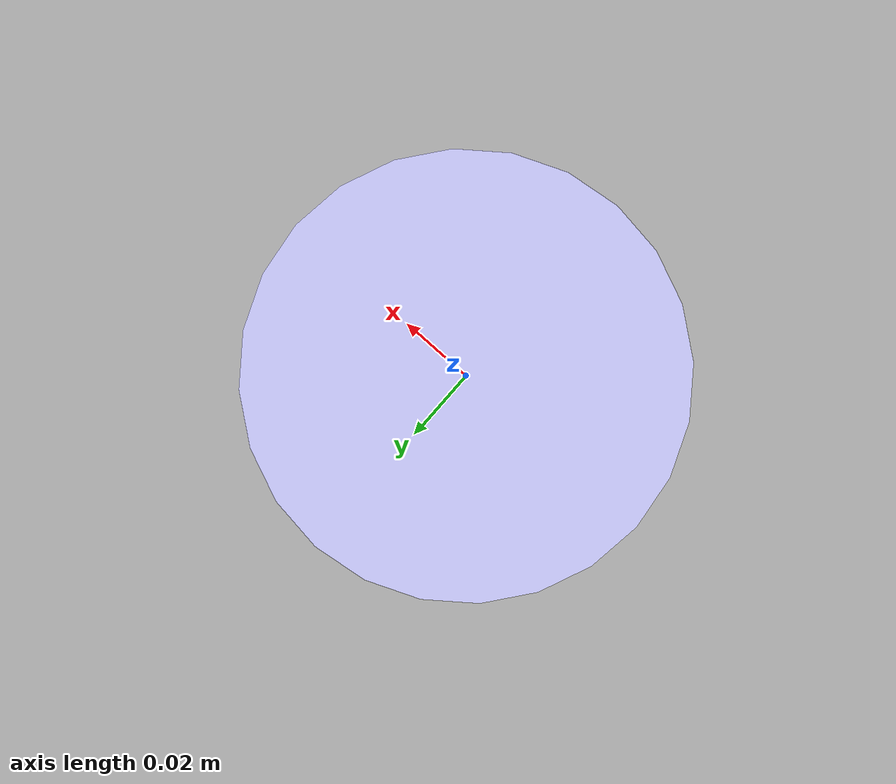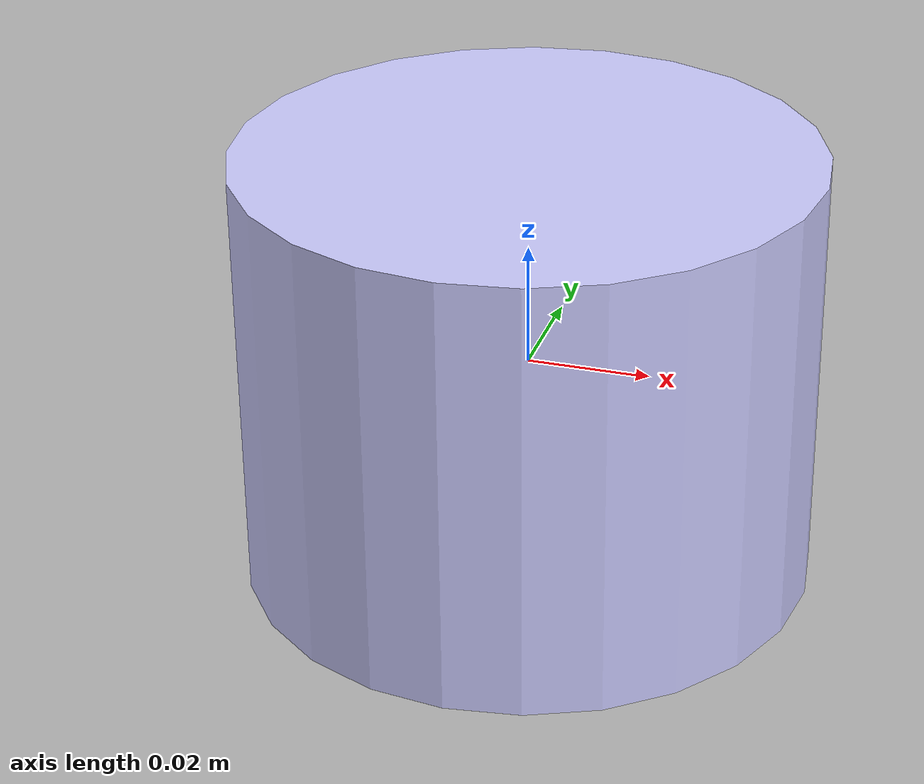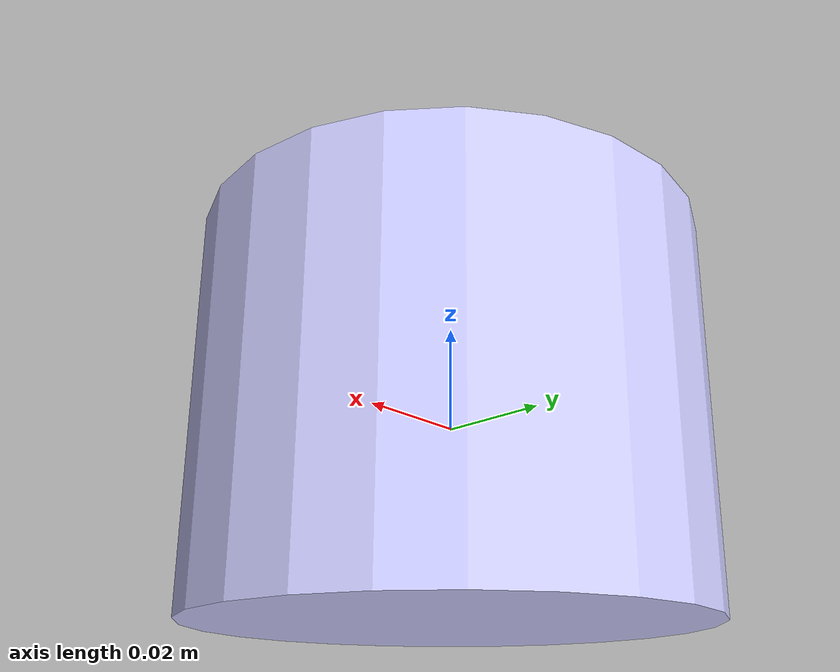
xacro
<?xml version="1.0" ?>
<robot name="peg" xmlns:xacro="http://ros.org/wiki/xacro">
  <material name="plate">
    <color rgba="0.8 0.8 1"/>
  </material>
  <link name="peg_link">
    <visual>
      <geometry>
        <cylinder length="0.072" radius="0.047"/>
      </geometry>
      <material name="plate"/>
    </visual>
  </link>
</robot>
